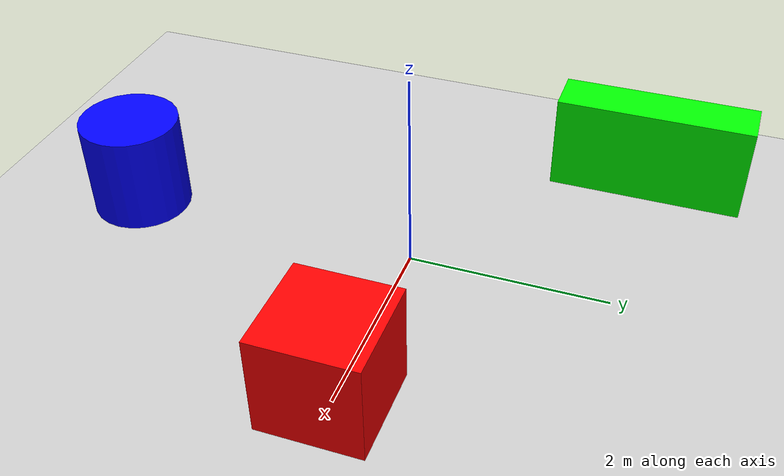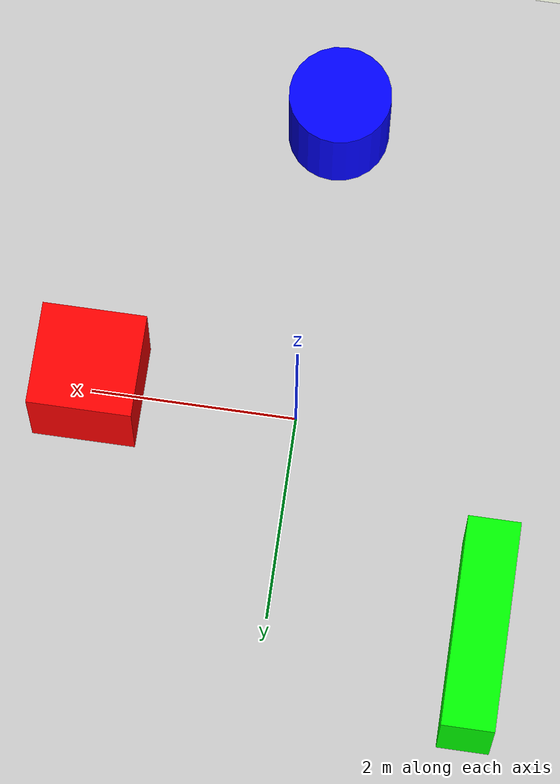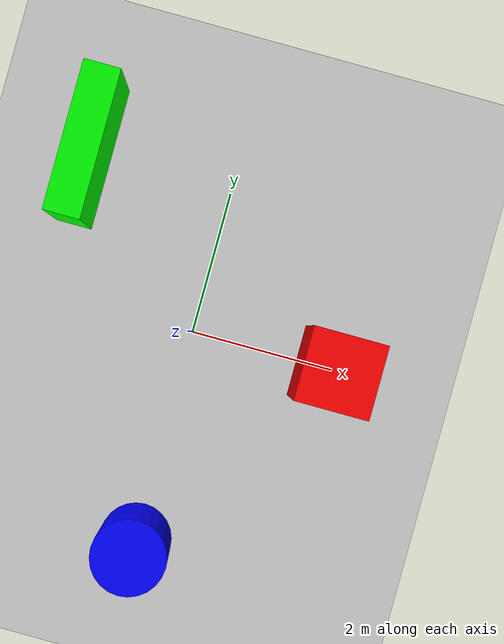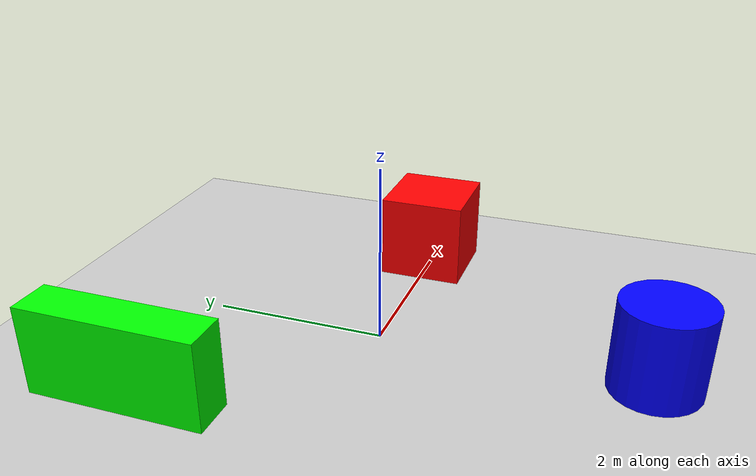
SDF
<?xml version="1.0" ?>
<sdf version="1.6">
  <world name="dojo_world">

    <!-- Physics -->
    <physics name="default_physics" default="0" type="ode">
      <gravity>0 0 -9.8066</gravity>
      <ode>
        <solver>
          <type>quick</type>
          <iters>150</iters>
          <sor>1.3</sor>
          <use_dynamic_moi_rescaling>0</use_dynamic_moi_rescaling>
        </solver>
        <constraints>
          <cfm>0.00001</cfm>
          <erp>0.2</erp>
          <contact_max_correcting_vel>1000</contact_max_correcting_vel>
          <contact_surface_layer>0.01</contact_surface_layer>
        </constraints>
      </ode>
      <max_step_size>0.004</max_step_size>
      <real_time_factor>1.0</real_time_factor>
      <real_time_update_rate>250</real_time_update_rate>
    </physics>

    <!-- Scene -->
    <scene>
      <ambient>0.4 0.4 0.4 1</ambient>
      <background>0.7 0.7 0.7 1</background>
      <shadows>true</shadows>
    </scene>

    <!-- Sun -->
    <include>
      <uri>model://sun</uri>
    </include>

    <!-- Ground plane -->
    <include>
      <uri>model://ground_plane</uri>
    </include>

    <!-- Some obstacles for testing -->
    <model name="box_obstacle_1">
      <pose>2 0 0.5 0 0 0</pose>
      <static>true</static>
      <link name="link">
        <collision name="collision">
          <geometry>
            <box>
              <size>1 1 1</size>
            </box>
          </geometry>
        </collision>
        <visual name="visual">
          <geometry>
            <box>
              <size>1 1 1</size>
            </box>
          </geometry>
          <material>
            <ambient>1 0 0 1</ambient>
            <diffuse>1 0 0 1</diffuse>
            <specular>0 0 0 1</specular>
          </material>
        </visual>
      </link>
    </model>

    <model name="box_obstacle_2">
      <pose>-2 2 0.5 0 0 0</pose>
      <static>true</static>
      <link name="link">
        <collision name="collision">
          <geometry>
            <box>
              <size>0.5 2 1</size>
            </box>
          </geometry>
        </collision>
        <visual name="visual">
          <geometry>
            <box>
              <size>0.5 2 1</size>
            </box>
          </geometry>
          <material>
            <ambient>0 1 0 1</ambient>
            <diffuse>0 1 0 1</diffuse>
            <specular>0 0 0 1</specular>
          </material>
        </visual>
      </link>
    </model>

    <!-- Cylinder obstacle -->
    <model name="cylinder_obstacle">
      <pose>0 -3 0.5 0 0 0</pose>
      <static>true</static>
      <link name="link">
        <collision name="collision">
          <geometry>
            <cylinder>
              <radius>0.5</radius>
              <length>1</length>
            </cylinder>
          </geometry>
        </collision>
        <visual name="visual">
          <geometry>
            <cylinder>
              <radius>0.5</radius>
              <length>1</length>
            </cylinder>
          </geometry>
          <material>
            <ambient>0 0 1 1</ambient>
            <diffuse>0 0 1 1</diffuse>
            <specular>0 0 0 1</specular>
          </material>
        </visual>
      </link>
    </model>

  </world>
</sdf>
